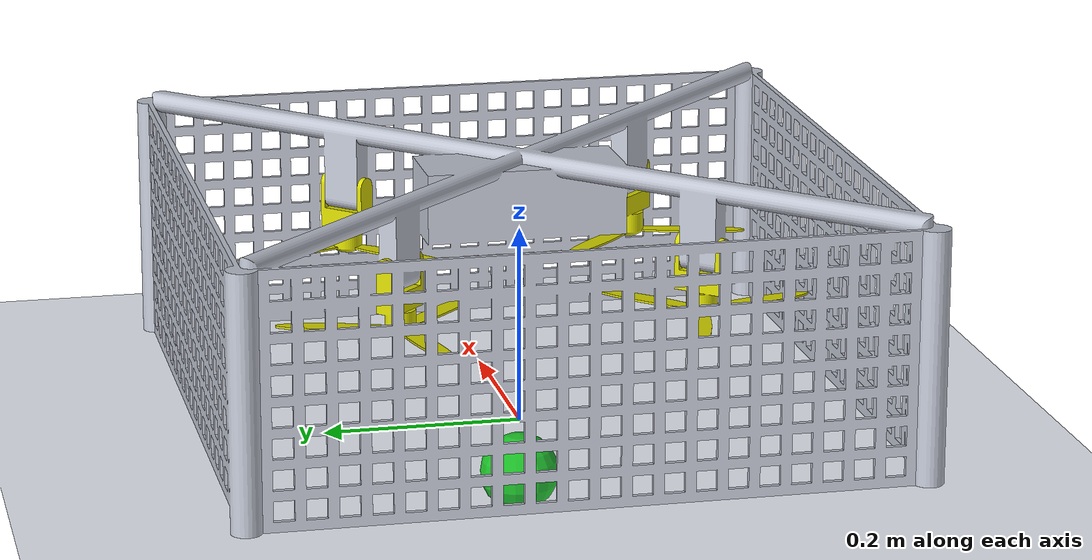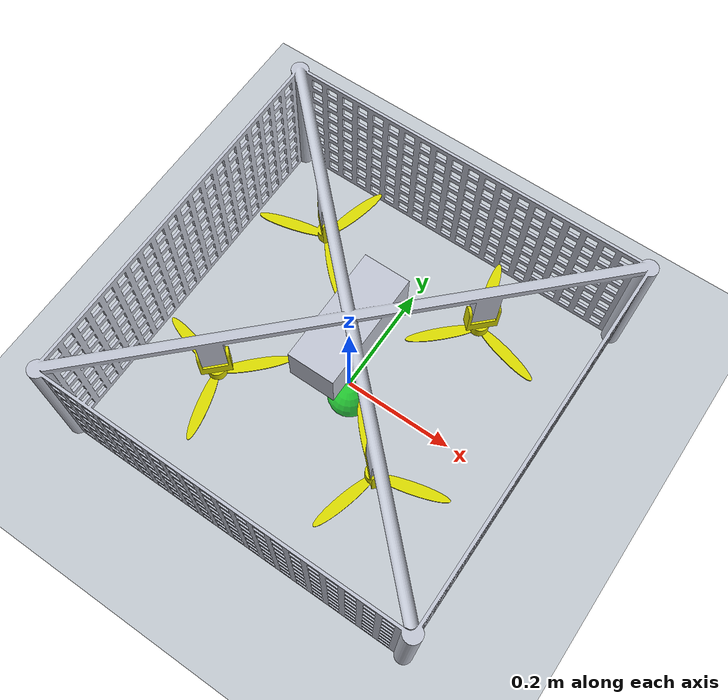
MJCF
<mujoco model="Palletrone">
  <include file="Palletrone.xml"/>

  <visual>
    <headlight diffuse="0.7 0.72 0.75" ambient="0.2 0.22 0.25" specular="0.08 0.08 0.08"/>
    <rgba haze="0.3 0.4 0.52 1"/>
    <global azimuth="45" elevation="35.264" ellipsoidinertia="false"/>
  </visual>

  <asset>
    <texture type="skybox" builtin="gradient" rgb1="0.45 0.62 0.78" rgb2="0.08 0.15 0.25" width="512" height="3072"/>
    <texture type="2d" name="groundplane" builtin="checker" mark="edge" rgb1="0.32 0.4 0.5" rgb2="0.2 0.28 0.38"
      markrgb="0.5 0.6 0.72" width="100" height="100"/>
    <material name="groundplane" texture="groundplane" texuniform="true" texrepeat="2 2" reflectance="0.03"/>
  </asset>

  <worldbody>
    <light pos="0 0 10" dir="0 0 -1" directional="true" diffuse="0.7 0.72 0.75" ambient="0.12 0.14 0.17"/>
    <geom name="floor" size="0 0 0.05" type="plane" material="groundplane" contype="1" conaffinity="1"/>
  </worldbody>
</mujoco>

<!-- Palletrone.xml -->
<mujoco model="Palletrone">
  <compiler angle="radian"/>
  <asset>
    <mesh name="body_mesh"       file="BODY.stl"/>
    <mesh name="servo_prop_mesh" file="PROP.stl"/>
  </asset>

  <worldbody>
    <body name="base" pos="0 0 0.145">
      <freejoint name="root"/>
      <inertial pos="0 0 0" quat="1 0 0 0" mass="4.00" diaginertia="0.360091 0.360702 0.660702"/>
      <geom name="base_vis" type="mesh" mesh="body_mesh" rgba="0.75 0.77 0.82 1" contype="1" conaffinity="1"/>

      <site name="imu" pos="0 0 0" quat="1 0 0 0"/>
      <site name="payload_marker" pos="0 0 -0.2" type="sphere" size="0.04"
            rgba="0.1 1 0.1 1"/>

      <body name="servo1" pos="0.148492 0.148492 0.145" quat="0.9238795 0 0 0.3826834">
        <joint name="j_servo1" type="hinge" axis="1 0 0" pos="0 0 -0.075" range="-0.7 0.7" damping="0.1"/>
        <body name="prop1_body" pos="0 0 -0.075">
          <geom name="servo1_vis" type="mesh" mesh="servo_prop_mesh" mass="0.2"
                quat="0.7071068 0 0 0.7071068"
                rgba="0.85 0.85 0.0 1" contype="0" conaffinity="0"/>
          <site name="prop1_site" pos="0 0 0" size="0.004" type="sphere"/>
        </body>
      </body>

      <body name="servo2" pos="-0.148492 0.148492 0.145" quat="0.3826834 0 0 0.9238795">
        <joint name="j_servo2" type="hinge" axis="1 0 0" pos="0 0 -0.075" range="-0.7 0.7" damping="0.1"/>
        <body name="prop2_body" pos="0 0 -0.075">
          <geom name="servo2_vis" type="mesh" mesh="servo_prop_mesh" mass="0.2"
                quat="0.7071068 0 0 0.7071068"
                rgba="0.85 0.85 0.0 1" contype="0" conaffinity="0"/>
          <site name="prop2_site" pos="0 0 0" size="0.004" type="sphere"/>
        </body>
      </body>

      <body name="servo3" pos="-0.148492 -0.148492 0.145" quat="0.3826834 0 0 -0.9238795">
        <joint name="j_servo3" type="hinge" axis="1 0 0" pos="0 0 -0.075" range="-0.7 0.7" damping="0.1"/>
        <body name="prop3_body" pos="0 0 -0.075">
          <geom name="servo3_vis" type="mesh" mesh="servo_prop_mesh" mass="0.2"
                quat="0.7071068 0 0 0.7071068"
                rgba="0.85 0.85 0.0 1" contype="0" conaffinity="0"/>
          <site name="prop3_site" pos="0 0 0" size="0.004" type="sphere"/>
        </body>
      </body>

      <body name="servo4" pos="0.148492 -0.148492 0.145" quat="0.9238795 0 0 -0.3826834">
        <joint name="j_servo4" type="hinge" axis="1 0 0" pos="0 0 -0.075" range="-0.7 0.7" damping="0.1"/>
        <body name="prop4_body" pos="0 0 -0.075">
          <geom name="servo4_vis" type="mesh" mesh="servo_prop_mesh" mass="0.2"
                quat="0.7071068 0 0 0.7071068"
                rgba="0.85 0.85 0.0 1" contype="0" conaffinity="0"/>
          <site name="prop4_site" pos="0 0 0" size="0.004" type="sphere"/>
        </body>
      </body>
    </body>
  </worldbody>

  <actuator>
    <general name="BLDC1" site="prop1_site" gear="0 0 1 0 0  0.02"  ctrlrange="0 50"/>
    <general name="BLDC2" site="prop2_site" gear="0 0 1 0 0 -0.02"  ctrlrange="0 50"/>
    <general name="BLDC3" site="prop3_site" gear="0 0 1 0 0  0.02"  ctrlrange="0 50"/>
    <general name="BLDC4" site="prop4_site" gear="0 0 1 0 0 -0.02"  ctrlrange="0 50"/>

    <position name="servo1_pos" joint="j_servo1" kp="50" kv="0.02" ctrlrange="-0.7 0.7"/>
    <position name="servo2_pos" joint="j_servo2" kp="50" kv="0.02" ctrlrange="-0.7 0.7"/>
    <position name="servo3_pos" joint="j_servo3" kp="50" kv="0.02" ctrlrange="-0.7 0.7"/>
    <position name="servo4_pos" joint="j_servo4" kp="50" kv="0.02" ctrlrange="-0.7 0.7"/>
  </actuator>

  <sensor>
    <framequat   name="body_quat"   objtype="site" objname="imu"/>
    <gyro        name="body_gyro"   site="imu"/>
    <framepos    name="base_pos"    objtype="body" objname="base"/>
    <framelinvel name="base_linvel" objtype="body" objname="base"/>

    <jointpos name="servo1_angle" joint="j_servo1"/>
    <jointpos name="servo2_angle" joint="j_servo2"/>
    <jointpos name="servo3_angle" joint="j_servo3"/>
    <jointpos name="servo4_angle" joint="j_servo4"/>
  </sensor>
</mujoco>
